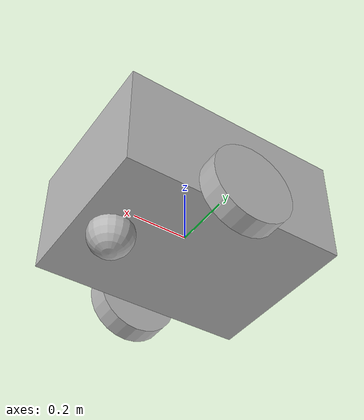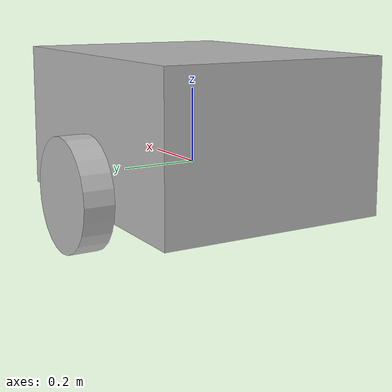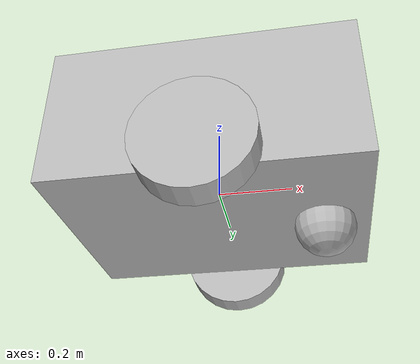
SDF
<?xml version="1.0"?>

<sdf version="1.10">

    <model name="robot_1">

        <static>false</static>

        <!-- Main robot chassis -->
        <link name="base_link">

            <visual name="base_visual">
                <!-- 0.4 m tall (0.1-0.5 m above floor) so other robots' LiDAR scan plane
                     (0.35 m) hits this chassis; at 0.2 m robots were invisible to each other -->
                <pose>0 0 0.1 0 0 0</pose>
                <geometry>
                    <box>
                        <size>0.8 0.6 0.4</size>
                    </box>
                </geometry>
            </visual>

            <collision name="base_collision">
                <pose>0 0 0.1 0 0 0</pose>
                <geometry>
                    <box>
                        <size>0.8 0.6 0.4</size>
                    </box>
                </geometry>
            </collision>

            <inertial>
                <mass>10.0</mass>
                <inertia>
                    <ixx>0.61</ixx>
                    <iyy>0.56</iyy>
                    <izz>1.13</izz>
                    <ixy>0.0</ixy>
                    <ixz>0.0</ixz>
                    <iyz>0.0</iyz>
                </inertia>
            </inertial>
            <!-- 2D LiDAR sensor -->
            <sensor name="lidar" type="gpu_lidar">
                <pose>0 0 0.15 0 0 0</pose>
                <topic>/robot_1/scan</topic>
                <update_rate>10</update_rate>

                <lidar>
                    <scan>
                        <horizontal>
                            <samples>360</samples>
                            <resolution>1</resolution>
                            <min_angle>-3.14159</min_angle>
                            <max_angle>3.14159</max_angle>
                        </horizontal>
                    </scan>

                    <range>
                        <min>0.12</min>
                        <max>10.0</max>
                        <resolution>0.01</resolution>
                    </range>
                </lidar>

                <always_on>true</always_on>
                <visualize>true</visualize>
            </sensor>

        </link>

        <!-- Left driven wheel -->
        <link name="left_wheel">

            <pose>0 0.34 -0.05 0 0 0</pose>

            <visual name="left_wheel_visual">
                <geometry>
                    <cylinder>
                        <radius>0.15</radius>
                        <length>0.08</length>
                    </cylinder>
                </geometry>

                <!-- Rotate cylinder so axle points along Y -->
                <pose>0 0 0 1.5708 0 0</pose>
            </visual>

            <collision name="left_wheel_collision">
                <geometry>
                    <cylinder>
                        <radius>0.15</radius>
                        <length>0.08</length>
                    </cylinder>
                </geometry>

                <pose>0 0 0 1.5708 0 0</pose>
            </collision>

            <inertial>
                <mass>1.0</mass>
                <inertia>
                    <ixx>0.0069</ixx>
                    <iyy>0.0069</iyy>
                    <izz>0.01125</izz>
                    <ixy>0.0</ixy>
                    <ixz>0.0</ixz>
                    <iyz>0.0</iyz>
                </inertia>
            </inertial>

        </link>

        <!-- Right driven wheel -->
        <link name="right_wheel">

            <pose>0 -0.34 -0.05 0 0 0</pose>

            <visual name="right_wheel_visual">
                <geometry>
                    <cylinder>
                        <radius>0.15</radius>
                        <length>0.08</length>
                    </cylinder>
                </geometry>

                <!-- Rotate cylinder so axle points along Y -->
                <pose>0 0 0 1.5708 0 0</pose>
            </visual>

            <collision name="right_wheel_collision">
                <geometry>
                    <cylinder>
                        <radius>0.15</radius>
                        <length>0.08</length>
                    </cylinder>
                </geometry>

                <pose>0 0 0 1.5708 0 0</pose>
            </collision>

            <inertial>
                <mass>1.0</mass>
                <inertia>
                    <ixx>0.0069</ixx>
                    <iyy>0.0069</iyy>
                    <izz>0.01125</izz>
                    <ixy>0.0</ixy>
                    <ixz>0.0</ixz>
                    <iyz>0.0</iyz>
                </inertia>
            </inertial>

        </link>

        <!-- Front caster -->
        <link name="caster">

            <pose>0.28 0 -0.12 0 0 0</pose>

            <visual name="caster_visual">
                <geometry>
                    <sphere>
                        <radius>0.08</radius>
                    </sphere>
                </geometry>
            </visual>

            <collision name="caster_collision">
                <geometry>
                    <sphere>
                        <radius>0.08</radius>
                    </sphere>
                </geometry>
            </collision>

            <inertial>
                <mass>0.5</mass>
                <inertia>
                    <ixx>0.00128</ixx>
                    <iyy>0.00128</iyy>
                    <izz>0.00128</izz>
                    <ixy>0.0</ixy>
                    <ixz>0.0</ixz>
                    <iyz>0.0</iyz>
                </inertia>
            </inertial>

        </link>

        <!-- Left wheel joint -->
        <joint name="left_wheel_joint" type="revolute">

            <parent>base_link</parent>
            <child>left_wheel</child>

            <axis>
                <xyz>0 1 0</xyz>
            </axis>

        </joint>

        <!-- Right wheel joint -->
        <joint name="right_wheel_joint" type="revolute">

            <parent>base_link</parent>
            <child>right_wheel</child>

            <axis>
                <xyz>0 1 0</xyz>
            </axis>

        </joint>

        <!-- Caster joint -->
        <joint name="caster_joint" type="ball">

            <parent>base_link</parent>
            <child>caster</child>

        </joint>

        <!-- Differential drive system -->
        <plugin filename="gz-sim-diff-drive-system" name="gz::sim::systems::DiffDrive">

            <left_joint>left_wheel_joint</left_joint>
            <right_joint>right_wheel_joint</right_joint>

            <wheel_separation>0.68</wheel_separation>
            <wheel_radius>0.15</wheel_radius>

            <topic>/robot_1/cmd_vel</topic>

            <odom_topic>/robot_1/odom</odom_topic>
            <tf_topic>/tf</tf_topic>

            <frame_id>robot_1/odom</frame_id>
            <child_frame_id>robot_1/base_link</child_frame_id>

        </plugin>

    </model>

</sdf>
